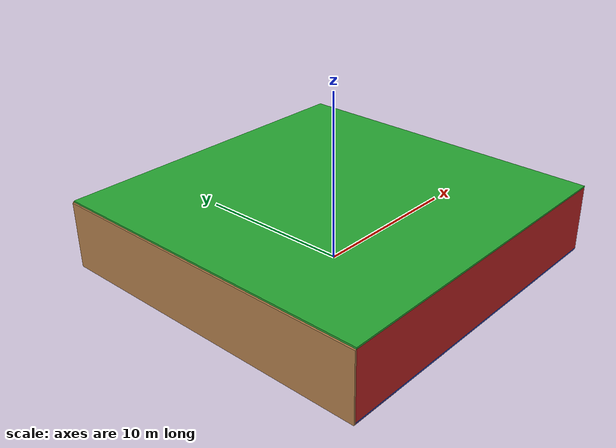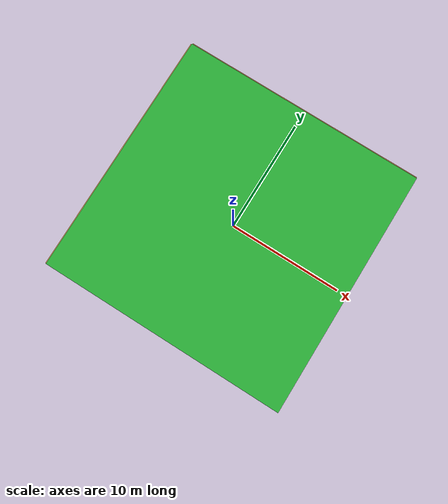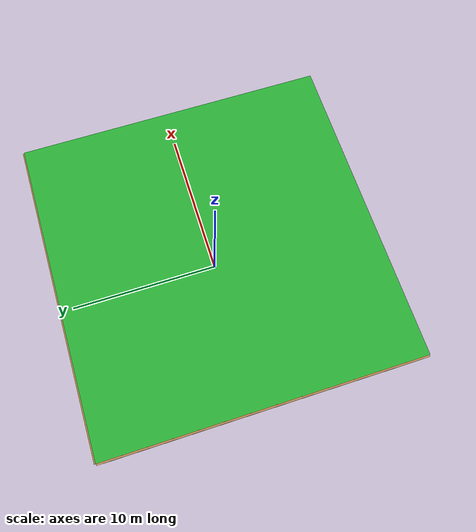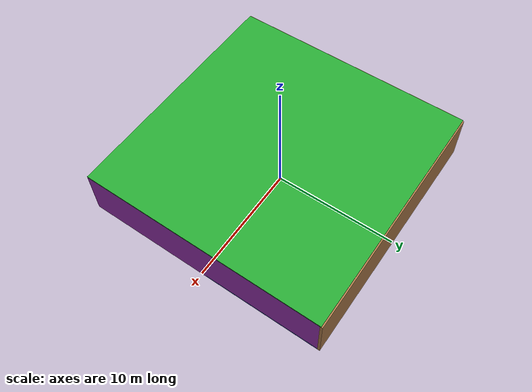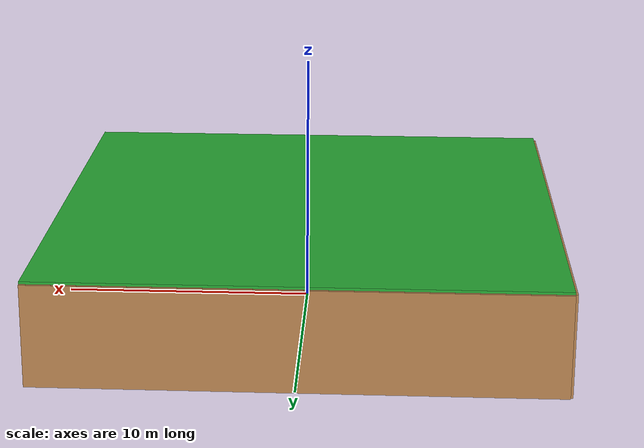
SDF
<sdf version="1.4">
 <world name="default">
  <physics type="ode">
   <max_step_size>0.001</max_step_size>
   <real_time_factor>1</real_time_factor>
   <real_time_update_rate>1000</real_time_update_rate>
   <gravity>0 0 -9.8</gravity>
  </physics>
  <scene><ambient>0.4 0.4 0.4 1</ambient><background>0.7 0.7 0.7 1</background><shadows>1</shadows></scene>
  <model name="Surrounding">
   <static>1</static>
   <link name="Ceiling">
    <collision name="Ceiling_Collision"><geometry><box><size>20 20 0.1</size></box></geometry></collision>
    <visual name="Ceiling_Visual">
     <geometry><box><size>20 20 0.1</size></box></geometry>
     <material>
      <script><uri>file://media/materials/scripts/gazebo.material</uri><name>Gazebo/GreenGlow</name></script>
     </material>
    </visual>
    <pose>0 0 4.05 0 0 0</pose>
   </link>
   <link name="Wall_South">
    <collision name="Wall_South_Collision">
     <geometry><box><size>20 0 4</size></box></geometry>
     <pose>0 0 2 0 -0 0</pose>
    </collision>
    <visual name="Wall_South_Visual">
     <pose>0 0 2 0 -0 0</pose>
     <geometry><box><size>20 0 4</size></box></geometry>
     <material>
      <script><uri>file://media/materials/scripts/gazebo.material</uri><name>Gazebo/RedBright</name></script>
     </material>
    </visual>
    <velocity_decay><linear>0</linear><angular>0</angular></velocity_decay>
    <pose>0 -10 0 0 -0 0</pose>
   </link>
   <link name="Wall_East">
    <collision name="Wall_21_Collision">
     <geometry><box><size>20 0 4</size></box></geometry>
     <pose>0 0 2 0 -0 0</pose>
    </collision>
    <visual name="Wall_21_Visual">
     <pose>0 0 2 0 -0 0</pose>
     <geometry><box><size>20 0 4</size></box></geometry>
     <material>
      <script><uri>file://media/materials/scripts/gazebo.material</uri><name>Gazebo/PurpleGlow</name></script>
     </material>
    </visual>
    <velocity_decay><linear>0</linear><angular>0</angular></velocity_decay>
    <pose>10 0 0 0 -0 1.5708</pose>
   </link>
   <link name="Wall_North">
    <collision name="Wall_22_Collision">
     <geometry><box><size>20 0.2 4</size></box></geometry>
     <pose>0 0 2 0 -0 0</pose>
    </collision>
    <visual name="Wall_22_Visual">
     <pose>0 0 2 0 -0 0</pose>
     <geometry><box><size>20 0.2 4</size></box></geometry>
     <material>
      <script><uri>file://media/materials/scripts/gazebo.material</uri><name>Gazebo/Wood</name></script>
     </material>
    </visual>
    <velocity_decay><linear>0</linear><angular>0</angular></velocity_decay>
    <pose>0 10 0 0 -0 0</pose>
   </link>
   <link name="Wall_West">
    <collision name="Wall_23_Collision">
     <geometry><box><size>20 0.2 4</size></box></geometry>
     <pose>0 0 2 0 -0 0</pose>
    </collision>
    <visual name="Wall_23_Visual">
     <pose>0 0 2 0 -0 0</pose>
     <geometry><box><size>20 0.2 4</size></box></geometry>
     <material>
      <script><uri>file://media/materials/scripts/gazebo.material</uri><name>Gazebo/WoodFloor</name></script>
     </material>
    </visual>
    <velocity_decay><linear>0</linear><angular>0</angular></velocity_decay>
    <pose>-10 0 0 0 0 -1.5708</pose>
   </link>
   <link name="Ground_link">
    <collision name="collision">
     <pose>0 0 .05 0 -0 0</pose>
     <geometry><box><size>20 20 0.1</size></box></geometry>
    </collision>
    <visual name="visual">
     <pose>0 0 .05 0 -0 0</pose>
     <geometry><box><size>20 20 0.1</size></box></geometry>
     <material>
      <script><uri>file://media/materials/scripts/gazebo.material</uri><name>Gazebo/Blue</name></script>
     </material>
    </visual>
   </link>
   <static>1</static>
  </model>
  <spherical_coordinates>
   <surface_model>EARTH_WGS84</surface_model>
   <latitude_deg>0</latitude_deg>
   <longitude_deg>0</longitude_deg>
   <elevation>0</elevation>
   <heading_deg>0</heading_deg>
  </spherical_coordinates>
  <light name="lightball_0" type="diffuse">
   <diffuse>0.8 0.8 0.8 1</diffuse>
   <specular>0.2 0.2 0.2 1</specular>
   <attenuation>
    <range>100</range>
    <constant>0.7</constant>
    <linear>0.01</linear>
    <quadratic>0.001</quadratic>
   </attenuation>
   <direction>-0.5 0.1 -0.9</direction>
   <pose>-8.17259014947 6.60948489456 1.41195364505 0 0 0</pose>
  </light>
  <light name="lightball_1" type="diffuse">
   <diffuse>0.8 0.8 0.8 1</diffuse>
   <specular>0.2 0.2 0.2 1</specular>
   <attenuation>
    <range>100</range>
    <constant>0.7</constant>
    <linear>0.01</linear>
    <quadratic>0.001</quadratic>
   </attenuation>
   <direction>-0.5 0.1 -0.9</direction>
   <pose>7.1435919665 -3.08773591181 1.25522045059 0 0 0</pose>
  </light>
  <light name="lightball_2" type="diffuse">
   <diffuse>0.8 0.8 0.8 1</diffuse>
   <specular>0.2 0.2 0.2 1</specular>
   <attenuation>
    <range>100</range>
    <constant>0.7</constant>
    <linear>0.01</linear>
    <quadratic>0.001</quadratic>
   </attenuation>
   <direction>-0.5 0.1 -0.9</direction>
   <pose>2.31115438153 3.80732438481 2.08116359207 0 0 0</pose>
  </light>
  <light name="lightball_3" type="diffuse">
   <diffuse>0.8 0.8 0.8 1</diffuse>
   <specular>0.2 0.2 0.2 1</specular>
   <attenuation>
    <range>100</range>
    <constant>0.7</constant>
    <linear>0.01</linear>
    <quadratic>0.001</quadratic>
   </attenuation>
   <direction>-0.5 0.1 -0.9</direction>
   <pose>-0.53369664742 -8.44927804076 1.99432580304 0 0 0</pose>
  </light>
  <light name="lightball_4" type="diffuse">
   <diffuse>0.8 0.8 0.8 1</diffuse>
   <specular>0.2 0.2 0.2 1</specular>
   <attenuation>
    <range>100</range>
    <constant>0.7</constant>
    <linear>0.01</linear>
    <quadratic>0.001</quadratic>
   </attenuation>
   <direction>-0.5 0.1 -0.9</direction>
   <pose>-7.44358341282 -9.33270270752 1.47152480948 0 0 0</pose>
  </light>
  <light name="lightball_5" type="diffuse">
   <diffuse>0.8 0.8 0.8 1</diffuse>
   <specular>0.2 0.2 0.2 1</specular>
   <attenuation>
    <range>100</range>
    <constant>0.7</constant>
    <linear>0.01</linear>
    <quadratic>0.001</quadratic>
   </attenuation>
   <direction>-0.5 0.1 -0.9</direction>
   <pose>2.78886382042 4.85319040485 1.60101883434 0 0 0</pose>
  </light>
  <include>
   <uri>model://textured_shapes</uri>
   <pose>-4.52357801083 -1.5305276211 0 0 0 0.99717536761</pose>
  </include>
  <include>
   <uri>model://construction_cone</uri>
   <pose>1.35175912577 1.94177927771 0 0 0 1.03529842551</pose>
  </include>
  <include><uri>model://table</uri><pose>5.12089060635 6.99487624119 0 0 0 0.487406238948</pose></include>
 </world>
</sdf>

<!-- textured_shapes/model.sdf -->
<sdf version="1.6">
  <model name="textured_shapes">
    <pose>0 0 0.5 0 0 0</pose>
    <link name="box">
      <pose>0 -1.5 0 0 0 0</pose>
      <collision name="collision">
        <geometry>
          <box>
            <size>1 1 1</size>
          </box>
        </geometry>
      </collision>
      <visual name="visual">
        <geometry>
          <box>
            <size>1 1 1</size>
          </box>
        </geometry>
        <material>
          <script>
            <uri>model://../model_source/models/textured_shapes/materials/scripts</uri>
            <uri>model://../model_source/models/textured_shapes/materials/textures</uri>
            <name>TexturedShape/Squares</name>
          </script>
        </material>
      </visual>
    </link>
    <link name="sphere">
      <collision name="collision">
        <geometry>
          <sphere>
            <radius>0.5</radius>
          </sphere>
        </geometry>
      </collision>
      <visual name="visual">
        <geometry>
          <sphere>
            <radius>0.5</radius>
          </sphere>
        </geometry>
        <material>
          <script>
            <uri>model://../model_source/models/textured_shapes/materials/scripts</uri>
            <uri>model://../model_source/models/textured_shapes/materials/textures</uri>
            <name>TexturedShape/Squares</name>
          </script>
        </material>
      </visual>
    </link>
    <link name="cylinder">
      <pose>0 1.5 0 0 0 0</pose>
      <collision name="collision">
        <geometry>
          <cylinder>
            <radius>0.5</radius>
            <length>1</length>
          </cylinder>
        </geometry>
      </collision>
      <visual name="visual">
        <geometry>
          <cylinder>
            <radius>0.5</radius>
            <length>1</length>
          </cylinder>
        </geometry>
        <material>
          <script>
            <uri>model://../model_source/models/textured_shapes/materials/scripts</uri>
            <uri>model://../model_source/models/textured_shapes/materials/textures</uri>
            <name>TexturedShape/Squares</name>
          </script>
        </material>
      </visual>
    </link>
  </model>
</sdf>

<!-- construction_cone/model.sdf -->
<sdf version="1.5">
  <model name="Construction Cone">
    <link name="link">
      <collision name="collision">
        <geometry>
          <mesh>
            <scale>10 10 10</scale>
            <uri>file://isr-testbed/construction_cone/meshes/construction_cone.dae</uri>
          </mesh>
        </geometry>
      </collision>
      <visual name="visual">
        <geometry>
          <mesh>
            <scale>10 10 10</scale>
            <uri>file://isr-testbed/construction_cone/meshes/construction_cone.dae</uri>
          </mesh>
        </geometry>
      </visual>
    </link>
  </model>
</sdf>

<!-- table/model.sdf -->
<sdf version="1.5">
  <model name="table">
    <static>true</static>
    <link name="link">
      <collision name="surface">
        <pose>0 0 1.0 0 0 0</pose>
        <geometry>
          <box>
            <size>1.5 0.8 0.03</size>
          </box>
        </geometry>
        <surface>
          <friction>
            <ode>
              <mu>0.6</mu>
              <mu2>0.6</mu2>
            </ode>
          </friction>
        </surface>
      </collision>
      <visual name="visual1">
        <pose>0 0 1.0 0 0 0</pose>
        <geometry>
          <box>
            <size>1.5 0.8 0.03</size>
          </box>
        </geometry>
        <material>
          <script>
            <uri>model://media/materials/scripts/gazebo.material</uri>
            <name>Gazebo/Wood</name>
          </script>
        </material>
      </visual>
      <collision name="front_left_leg">
        <pose>0.68 0.38 0.5 0 0 0</pose>
        <geometry>
          <cylinder>
            <radius>0.02</radius>
            <length>1.0</length>
          </cylinder>
        </geometry>
      </collision>
      <visual name="front_left_leg">
        <pose>0.68 0.38 0.5 0 0 0</pose>
        <geometry>
          <cylinder>
            <radius>0.02</radius>
            <length>1.0</length>
          </cylinder>
        </geometry>
        <material>
          <script>
            <uri>model://media/materials/scripts/gazebo.material</uri>
            <name>Gazebo/Grey</name>
          </script>
        </material>
      </visual>
      <collision name="front_right_leg">
        <pose>0.68 -0.38 0.5 0 0 0</pose>
        <geometry>
          <cylinder>
            <radius>0.02</radius>
            <length>1.0</length>
          </cylinder>
        </geometry>
      </collision>
      <visual name="front_right_leg">
        <pose>0.68 -0.38 0.5 0 0 0</pose>
        <geometry>
          <cylinder>
            <radius>0.02</radius>
            <length>1.0</length>
          </cylinder>
        </geometry>
        <material>
          <script>
            <uri>model://media/materials/scripts/gazebo.material</uri>
            <name>Gazebo/Grey</name>
          </script>
        </material>
      </visual>
      <collision name="back_right_leg">
        <pose>-0.68 -0.38 0.5 0 0 0</pose>
        <geometry>
          <cylinder>
            <radius>0.02</radius>
            <length>1.0</length>
          </cylinder>
        </geometry>
      </collision>
      <visual name="back_right_leg">
        <pose>-0.68 -0.38 0.5 0 0 0</pose>
        <geometry>
          <cylinder>
            <radius>0.02</radius>
            <length>1.0</length>
          </cylinder>
        </geometry>
        <material>
          <script>
            <uri>model://media/materials/scripts/gazebo.material</uri>
            <name>Gazebo/Grey</name>
          </script>
        </material>
      </visual>
      <collision name="back_left_leg">
        <pose>-0.68 0.38 0.5 0 0 0</pose>
        <geometry>
          <cylinder>
            <radius>0.02</radius>
            <length>1.0</length>
          </cylinder>
        </geometry>
      </collision>
      <visual name="back_left_leg">
        <pose>-0.68 0.38 0.5 0 0 0</pose>
        <geometry>
          <cylinder>
            <radius>0.02</radius>
            <length>1.0</length>
          </cylinder>
        </geometry>
        <material>
          <script>
            <uri>model://media/materials/scripts/gazebo.material</uri>
            <name>Gazebo/Grey</name>
          </script>
        </material>
      </visual>
    </link>
  </model>
</sdf>
